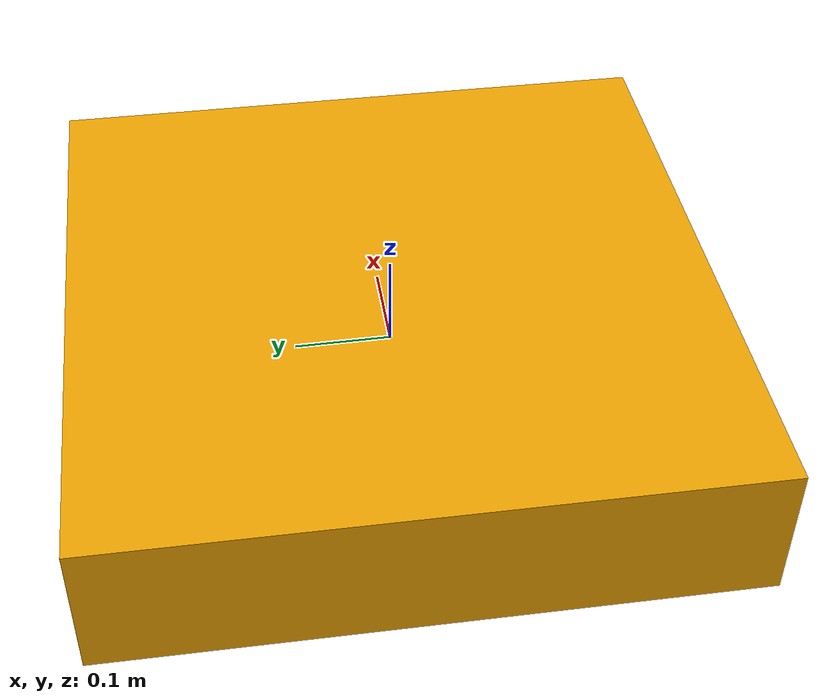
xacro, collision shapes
<?xml version="1.0"?>
<robot xmlns:xacro="http://www.ros.org/wiki/xacro" name="x500">
    <xacro:arg name="initial_positions_file" default="initial_positions.yaml" />

    <!-- Import x500 urdf file -->
    <xacro:include filename="$(find nav3d_uavs)/x500/description/urdf/x500.urdf.xacro"/>

    <!-- Import control_xacro -->

</robot>

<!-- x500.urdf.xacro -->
<robot name="x500"
  xmlns:xacro="http://ros.org/wiki/xacro">

  <!-- ====== Properties ====== -->
  <xacro:property name="prop_scale" value="0.846154"/>
  <xacro:property name="bell_mesh" value="package://nav3d_uavs/x500/description/meshes/5010Bell.dae"/>
  <xacro:property name="prop_ccw_mesh" value="package://nav3d_uavs/x500/description/meshes/1345_prop_ccw.stl"/>
  <xacro:property name="prop_cw_mesh" value="package://nav3d_uavs/x500/description/meshes/1345_prop_cw.stl"/>

  <xacro:property name="body_mesh" value="package://nav3d_uavs/x500/description/meshes/NXP-HGD-CF.dae"/>
  <xacro:property name="base_mesh" value="package://nav3d_uavs/x500/description/meshes/5010Base.dae"/>

  <xacro:property name="prop_origin_xyz" value="-0.022 -0.146385 -0.016"/>
  <xacro:property name="bell_origin_xyz" value="0 0 -0.032"/>

  <!-- ====== Macros ====== -->
  <xacro:macro name="rotor" params="idx joint_xyz prop_mesh bell_mesh scale">
    <link name="rotor_${idx}">
      <inertial>
        <mass value="0.016077"/>
        <inertia ixx="3.84649e-07" ixy="0.0" ixz="0.0" iyy="2.61159e-05" iyz="0.0" izz="2.64986e-05"/>
      </inertial>

      <visual>
        <origin xyz="${prop_origin_xyz}" rpy="0 0 0"/>
        <geometry>
          <mesh filename="${prop_mesh}" scale="${scale} ${scale} ${scale}"/>
        </geometry>
      </visual>

      <visual>
        <origin xyz="${bell_origin_xyz}" rpy="0 0 0"/>
        <geometry>
          <mesh filename="${bell_mesh}"/>
        </geometry>
      </visual>

      <collision>
        <origin xyz="0 0 0" rpy="0 0 0"/>
        <geometry>
          <box size="0.279231 0.0169231 0.000846154"/>
        </geometry>
      </collision>
    </link>

    <joint name="rotor_${idx}_joint" type="fixed">
      <parent link="base_link"/>
      <child link="rotor_${idx}"/>
      <origin xyz="${joint_xyz}" rpy="0 0 0"/>
    </joint>
  </xacro:macro>

  <!-- ====== Base Link ====== -->
  <link name="base_link">
    <inertial>
      <mass value="2.0"/>
      <inertia ixx="0.0216667" ixy="0.0" ixz="0.0" iyy="0.0216667" iyz="0.0" izz="0.04"/>
    </inertial>

    <visual>
      <origin xyz="0 0 0.025" rpy="0 0 -3.14159"/>
      <geometry>
        <mesh filename="${body_mesh}"/>
      </geometry>
    </visual>

    <visual>
      <origin xyz="0.174 0.174 0.032" rpy="0 0 -0.45"/>
      <geometry>
        <mesh filename="${base_mesh}"/>
      </geometry>
    </visual>
    <visual>
      <origin xyz="-0.174 0.174 0.032" rpy="0 0 -0.45"/>
      <geometry>
        <mesh filename="${base_mesh}"/>
      </geometry>
    </visual>
    <visual>
      <origin xyz="0.174 -0.174 0.032" rpy="0 0 -0.45"/>
      <geometry>
        <mesh filename="${base_mesh}"/>
      </geometry>
    </visual>
    <visual>
      <origin xyz="-0.174 -0.174 0.032" rpy="0 0 -0.45"/>
      <geometry>
        <mesh filename="${base_mesh}"/>
      </geometry>
    </visual>

    <collision>
      <origin xyz="0 0 0.01" rpy="0 0 0"/>
      <geometry>
        <box size="0.653553 0.653553 0.15"/>
      </geometry>
    </collision>
    <collision>
      <origin xyz="0 -0.098 -0.123" rpy="-0.35 0 0"/>
      <geometry>
        <box size="0.015 0.015 0.21"/>
      </geometry>
    </collision>
    <collision>
      <origin xyz="0 0.098 -0.123" rpy="0.35 0 0"/>
      <geometry>
        <box size="0.015 0.015 0.21"/>
      </geometry>
    </collision>
    <collision>
      <origin xyz="0 -0.132 -0.2195" rpy="0 0 0"/>
      <geometry>
        <box size="0.25 0.015 0.015"/>
      </geometry>
    </collision>
    <collision>
      <origin xyz="0 0.132 -0.2195" rpy="0 0 0"/>
      <geometry>
        <box size="0.25 0.015 0.015"/>
      </geometry>
    </collision>
  </link>

  <link name="oakd_link"/>
  <joint name="oakd_mount_joint" type="fixed">
    <parent link="base_link"/>
    <child link="oakd_link"/>
    <origin xyz="0.12 0.03 0.002" rpy="0 0 0"/>
  </joint>

  <link name="oakd_depth_frame"/>
  <joint name="oakd_depth_joint" type="fixed">
    <parent link="oakd_link"/>
    <child link="oakd_depth_frame"/>
    <origin xyz="0.01233 -0.03 0.01878" rpy="0 0 0"/>
  </joint>

  <link name="oakd_depth_optical_frame"/>
  <joint name="oakd_depth_optical_joint" type="fixed">
    <parent link="oakd_depth_frame"/>
    <child link="oakd_depth_optical_frame"/>
    <origin xyz="0 0 0" rpy="-1.5707963267948966 0 -1.5707963267948966"/>
  </joint>

  <link name="oakd_rgb_optical_frame"/>
  <joint name="oakd_rgb_optical_joint" type="fixed">
    <parent link="oakd_link"/>
    <child link="oakd_rgb_optical_frame"/>
    <origin xyz="0.01233 -0.03 0.01878" rpy="-1.5707963267948966 0 -1.5707963267948966"/>
  </joint>

  <!-- ====== Rotors ====== -->
  <xacro:rotor idx="0" joint_xyz="0.174 -0.174 0.06" prop_mesh="${prop_ccw_mesh}" bell_mesh="${bell_mesh}" scale="${prop_scale}"/>

  <xacro:rotor idx="1" joint_xyz="-0.174 0.174 0.06" prop_mesh="${prop_cw_mesh}" bell_mesh="${bell_mesh}" scale="${prop_scale}"/>

  <xacro:rotor idx="2" joint_xyz="0.174 0.174 0.06" prop_mesh="${prop_ccw_mesh}" bell_mesh="${bell_mesh}" scale="${prop_scale}"/>

  <xacro:rotor idx="3" joint_xyz="-0.174 -0.174 0.06" prop_mesh="${prop_cw_mesh}" bell_mesh="${bell_mesh}" scale="${prop_scale}"/>

</robot>
